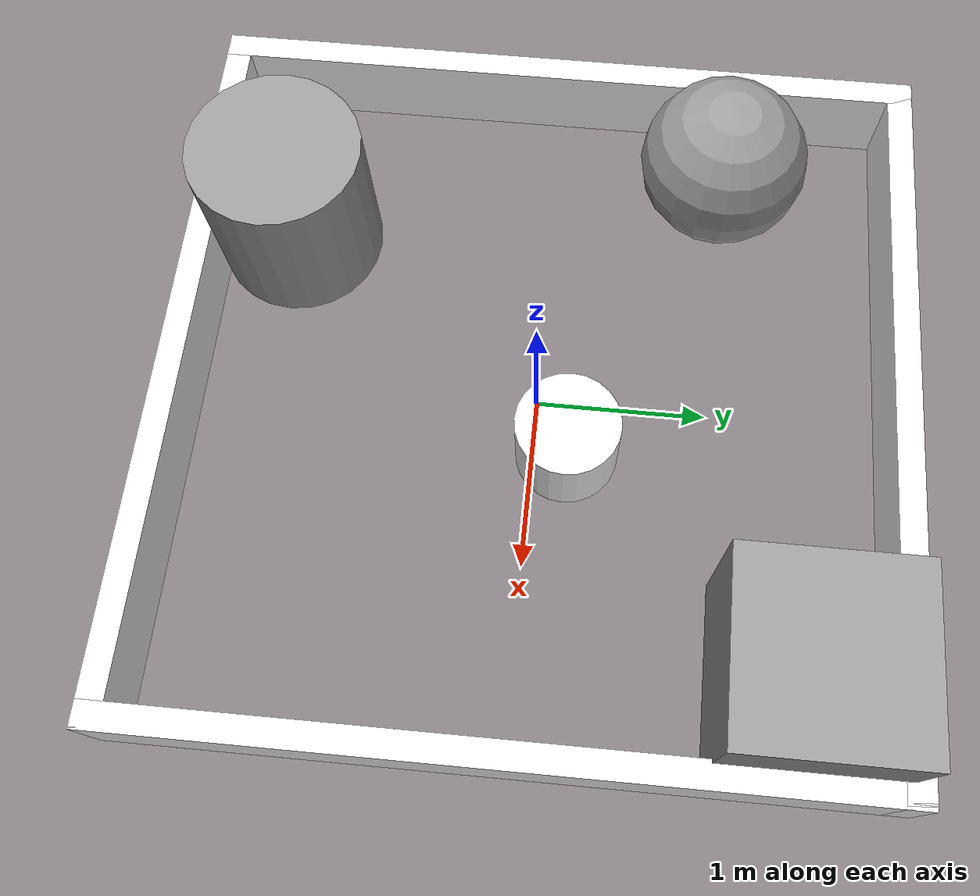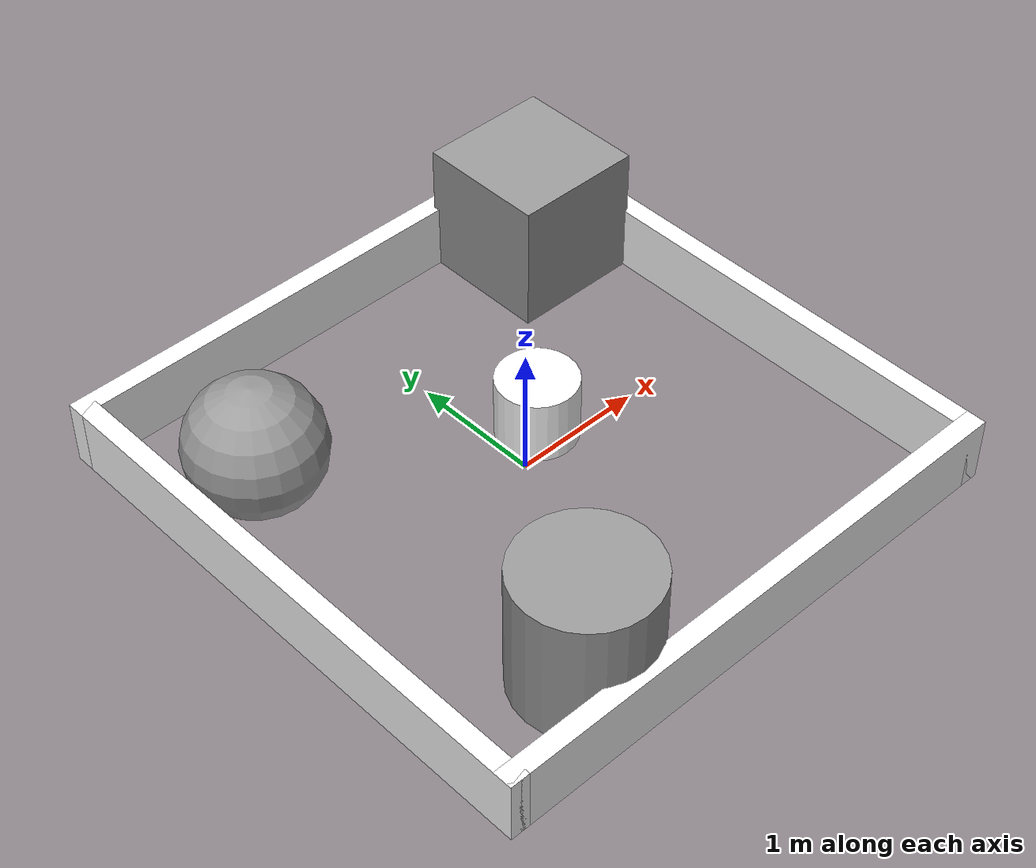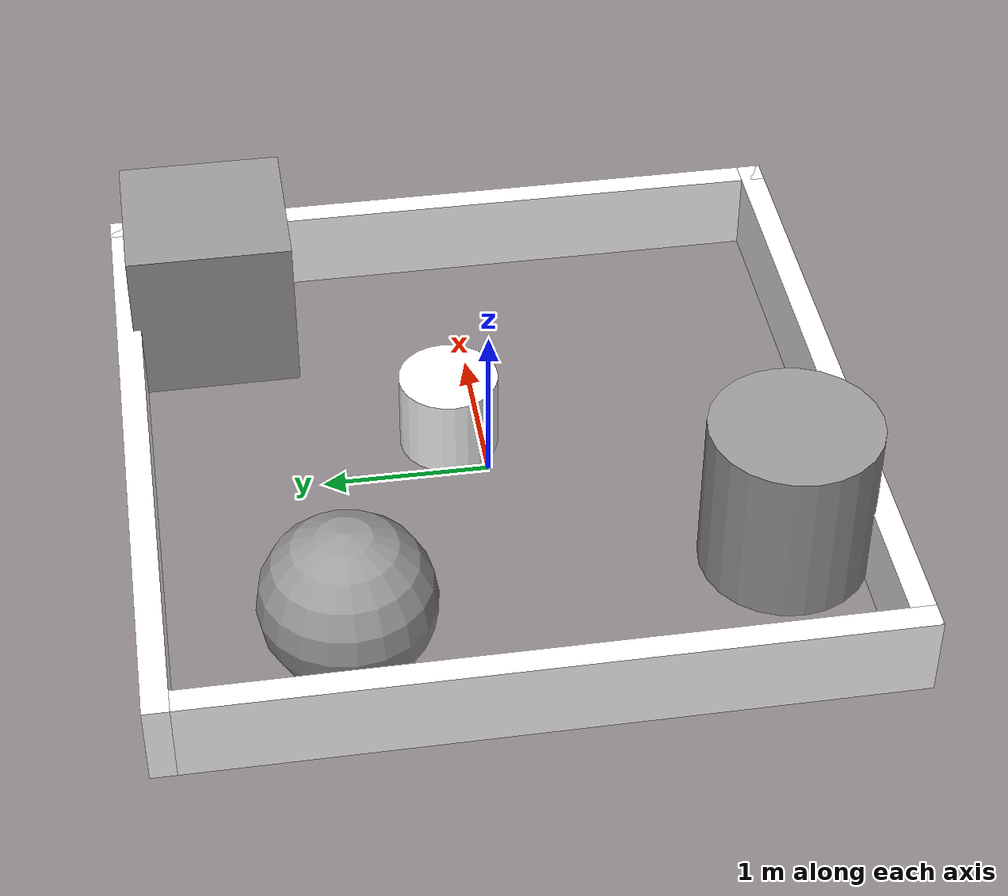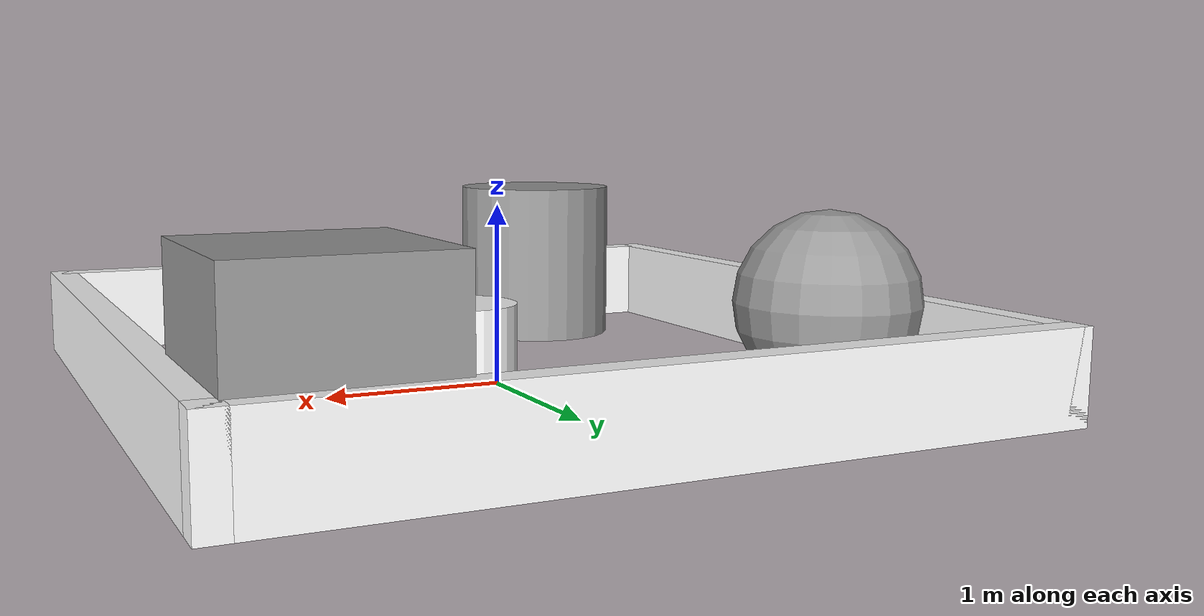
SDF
<?xml version='1.0'?>
<sdf version='1.6'>
  <model name='simple_custom'>
    <link name='fixed'>
      <pose frame=''>0 0 0 0 -0 0</pose>
      <self_collide>0</self_collide>
      <kinematic>0</kinematic>
    </link>
    <link name='Cylinder_1'>
      <pose frame=''>0.3 0.2 0 0 -0 0</pose>
      <self_collide>0</self_collide>
      <kinematic>0</kinematic>
      <visual name='Cylinder_1_Visual'>
        <pose frame=''>0 0 0.25 0 -0 0</pose>
        <geometry>
          <cylinder>
            <radius>0.3</radius>
            <length>0.5</length>
          </cylinder>
        </geometry>
        <material>
          <ambient>1 1 1 1</ambient>
          <diffuse>1 1 1 1</diffuse>
          <specular>0 0 0 1</specular>
          <emissive>0 0 0 1</emissive>
          <script>
            <name>ModelPreview_1::Cylinder_1::Cylinder_1_Visual_MATERIAL_</name>
            <uri>__default__</uri>
          </script>
        </material>
        <cast_shadows>1</cast_shadows>
        <transparency>0</transparency>
      </visual>
      <collision name='Cylinder_1_Collision'>
        <laser_retro>0</laser_retro>
        <max_contacts>10</max_contacts>
        <pose frame=''>0 0 0.25 0 -0 0</pose>
        <geometry>
          <cylinder>
            <radius>0.3</radius>
            <length>0.5</length>
          </cylinder>
        </geometry>
        <surface>
          <friction>
            <ode>
              <mu>1</mu>
              <mu2>1</mu2>
              <fdir1>0 0 0</fdir1>
              <slip1>0</slip1>
              <slip2>0</slip2>
            </ode>
            <torsional>
              <coefficient>1</coefficient>
              <patch_radius>0</patch_radius>
              <surface_radius>0</surface_radius>
              <use_patch_radius>1</use_patch_radius>
              <ode>
                <slip>0</slip>
              </ode>
            </torsional>
          </friction>
          <bounce>
            <restitution_coefficient>0</restitution_coefficient>
            <threshold>1e+06</threshold>
          </bounce>
          <contact>
            <collide_without_contact>0</collide_without_contact>
            <collide_without_contact_bitmask>1</collide_without_contact_bitmask>
            <collide_bitmask>1</collide_bitmask>
            <ode>
              <soft_cfm>0</soft_cfm>
              <soft_erp>0.2</soft_erp>
              <kp>1e+13</kp>
              <kd>1</kd>
              <max_vel>0.01</max_vel>
              <min_depth>0</min_depth>
            </ode>
            <bullet>
              <split_impulse>1</split_impulse>
              <split_impulse_penetration_threshold>-0.01</split_impulse_penetration_threshold>
              <soft_cfm>0</soft_cfm>
              <soft_erp>0.2</soft_erp>
              <kp>1e+13</kp>
              <kd>1</kd>
            </bullet>
          </contact>
        </surface>
      </collision>
    </link>
    <link name='Wall_0'>
      <pose frame=''>0 2.075 0 0 -0 0</pose>
      <self_collide>0</self_collide>
      <kinematic>0</kinematic>
      <visual name='Wall_0_Visual'>
        <pose frame=''>0 0 0.25 0 -0 0</pose>
        <geometry>
          <box>
            <size>4.3 0.15 0.5</size>
          </box>
        </geometry>
        <material>
          <ambient>1 1 1 1</ambient>
          <diffuse>1 1 1 1</diffuse>
          <specular>0 0 0 1</specular>
          <emissive>0 0 0 1</emissive>
          <script>
            <name>ModelPreview_1::Wall_0::Wall_0_Visual_MATERIAL_</name>
            <uri>__default__</uri>
          </script>
        </material>
        <cast_shadows>1</cast_shadows>
        <transparency>0</transparency>
      </visual>
      <collision name='Wall_0_Collision'>
        <laser_retro>0</laser_retro>
        <max_contacts>10</max_contacts>
        <pose frame=''>0 0 0.25 0 -0 0</pose>
        <geometry>
          <box>
            <size>4.3 0.15 0.5</size>
          </box>
        </geometry>
        <surface>
          <friction>
            <ode>
              <mu>1</mu>
              <mu2>1</mu2>
              <fdir1>0 0 0</fdir1>
              <slip1>0</slip1>
              <slip2>0</slip2>
            </ode>
            <torsional>
              <coefficient>1</coefficient>
              <patch_radius>0</patch_radius>
              <surface_radius>0</surface_radius>
              <use_patch_radius>1</use_patch_radius>
              <ode>
                <slip>0</slip>
              </ode>
            </torsional>
          </friction>
          <bounce>
            <restitution_coefficient>0</restitution_coefficient>
            <threshold>1e+06</threshold>
          </bounce>
          <contact>
            <collide_without_contact>0</collide_without_contact>
            <collide_without_contact_bitmask>1</collide_without_contact_bitmask>
            <collide_bitmask>1</collide_bitmask>
            <ode>
              <soft_cfm>0</soft_cfm>
              <soft_erp>0.2</soft_erp>
              <kp>1e+13</kp>
              <kd>1</kd>
              <max_vel>0.01</max_vel>
              <min_depth>0</min_depth>
            </ode>
            <bullet>
              <split_impulse>1</split_impulse>
              <split_impulse_penetration_threshold>-0.01</split_impulse_penetration_threshold>
              <soft_cfm>0</soft_cfm>
              <soft_erp>0.2</soft_erp>
              <kp>1e+13</kp>
              <kd>1</kd>
            </bullet>
          </contact>
        </surface>
      </collision>
    </link>
    <link name='Wall_2'>
      <pose frame=''>-2.075 0 0 0 0 -1.5708</pose>
      <self_collide>0</self_collide>
      <kinematic>0</kinematic>
      <visual name='Wall_2_Visual'>
        <pose frame=''>0 0 0.25 0 -0 0</pose>
        <geometry>
          <box>
            <size>4.3 0.15 0.5</size>
          </box>
        </geometry>
        <material>
          <ambient>1 1 1 1</ambient>
          <diffuse>1 1 1 1</diffuse>
          <specular>0 0 0 1</specular>
          <emissive>0 0 0 1</emissive>
          <script>
            <name>ModelPreview_1::Wall_2::Wall_2_Visual_MATERIAL_</name>
            <uri>__default__</uri>
          </script>
        </material>
        <cast_shadows>1</cast_shadows>
        <transparency>0</transparency>
      </visual>
      <collision name='Wall_2_Collision'>
        <laser_retro>0</laser_retro>
        <max_contacts>10</max_contacts>
        <pose frame=''>0 0 0.25 0 -0 0</pose>
        <geometry>
          <box>
            <size>4.3 0.15 0.5</size>
          </box>
        </geometry>
        <surface>
          <friction>
            <ode>
              <mu>1</mu>
              <mu2>1</mu2>
              <fdir1>0 0 0</fdir1>
              <slip1>0</slip1>
              <slip2>0</slip2>
            </ode>
            <torsional>
              <coefficient>1</coefficient>
              <patch_radius>0</patch_radius>
              <surface_radius>0</surface_radius>
              <use_patch_radius>1</use_patch_radius>
              <ode>
                <slip>0</slip>
              </ode>
            </torsional>
          </friction>
          <bounce>
            <restitution_coefficient>0</restitution_coefficient>
            <threshold>1e+06</threshold>
          </bounce>
          <contact>
            <collide_without_contact>0</collide_without_contact>
            <collide_without_contact_bitmask>1</collide_without_contact_bitmask>
            <collide_bitmask>1</collide_bitmask>
            <ode>
              <soft_cfm>0</soft_cfm>
              <soft_erp>0.2</soft_erp>
              <kp>1e+13</kp>
              <kd>1</kd>
              <max_vel>0.01</max_vel>
              <min_depth>0</min_depth>
            </ode>
            <bullet>
              <split_impulse>1</split_impulse>
              <split_impulse_penetration_threshold>-0.01</split_impulse_penetration_threshold>
              <soft_cfm>0</soft_cfm>
              <soft_erp>0.2</soft_erp>
              <kp>1e+13</kp>
              <kd>1</kd>
            </bullet>
          </contact>
        </surface>
      </collision>
    </link>
    <link name='Wall_3'>
      <pose frame=''>0 -2.075 0 0 -0 0</pose>
      <self_collide>0</self_collide>
      <kinematic>0</kinematic>
      <visual name='Wall_3_Visual'>
        <pose frame=''>0 0 0.25 0 -0 0</pose>
        <geometry>
          <box>
            <size>4.3 0.15 0.5</size>
          </box>
        </geometry>
        <material>
          <ambient>1 1 1 1</ambient>
          <diffuse>1 1 1 1</diffuse>
          <specular>0 0 0 1</specular>
          <emissive>0 0 0 1</emissive>
          <script>
            <name>ModelPreview_1::Wall_3::Wall_3_Visual_MATERIAL_</name>
            <uri>__default__</uri>
          </script>
        </material>
        <cast_shadows>1</cast_shadows>
        <transparency>0</transparency>
      </visual>
      <collision name='Wall_3_Collision'>
        <laser_retro>0</laser_retro>
        <max_contacts>10</max_contacts>
        <pose frame=''>0 0 0.25 0 -0 0</pose>
        <geometry>
          <box>
            <size>4.3 0.15 0.5</size>
          </box>
        </geometry>
        <surface>
          <friction>
            <ode>
              <mu>1</mu>
              <mu2>1</mu2>
              <fdir1>0 0 0</fdir1>
              <slip1>0</slip1>
              <slip2>0</slip2>
            </ode>
            <torsional>
              <coefficient>1</coefficient>
              <patch_radius>0</patch_radius>
              <surface_radius>0</surface_radius>
              <use_patch_radius>1</use_patch_radius>
              <ode>
                <slip>0</slip>
              </ode>
            </torsional>
          </friction>
          <bounce>
            <restitution_coefficient>0</restitution_coefficient>
            <threshold>1e+06</threshold>
          </bounce>
          <contact>
            <collide_without_contact>0</collide_without_contact>
            <collide_without_contact_bitmask>1</collide_without_contact_bitmask>
            <collide_bitmask>1</collide_bitmask>
            <ode>
              <soft_cfm>0</soft_cfm>
              <soft_erp>0.2</soft_erp>
              <kp>1e+13</kp>
              <kd>1</kd>
              <max_vel>0.01</max_vel>
              <min_depth>0</min_depth>
            </ode>
            <bullet>
              <split_impulse>1</split_impulse>
              <split_impulse_penetration_threshold>-0.01</split_impulse_penetration_threshold>
              <soft_cfm>0</soft_cfm>
              <soft_erp>0.2</soft_erp>
              <kp>1e+13</kp>
              <kd>1</kd>
            </bullet>
          </contact>
        </surface>
      </collision>
    </link>
    <link name='Wall_4'>
      <pose frame=''>2.075 0 0 0 -0 1.5708</pose>
      <self_collide>0</self_collide>
      <kinematic>0</kinematic>
      <visual name='Wall_4_Visual'>
        <pose frame=''>0 0 0.25 0 -0 0</pose>
        <geometry>
          <box>
            <size>4.3 0.15 0.5</size>
          </box>
        </geometry>
        <material>
          <ambient>1 1 1 1</ambient>
          <diffuse>1 1 1 1</diffuse>
          <specular>0 0 0 1</specular>
          <emissive>0 0 0 1</emissive>
          <script>
            <name>ModelPreview_1::Wall_4::Wall_4_Visual_MATERIAL_</name>
            <uri>__default__</uri>
          </script>
        </material>
        <cast_shadows>1</cast_shadows>
        <transparency>0</transparency>
      </visual>
      <collision name='Wall_4_Collision'>
        <laser_retro>0</laser_retro>
        <max_contacts>10</max_contacts>
        <pose frame=''>0 0 0.25 0 -0 0</pose>
        <geometry>
          <box>
            <size>4.3 0.15 0.5</size>
          </box>
        </geometry>
        <surface>
          <friction>
            <ode>
              <mu>1</mu>
              <mu2>1</mu2>
              <fdir1>0 0 0</fdir1>
              <slip1>0</slip1>
              <slip2>0</slip2>
            </ode>
            <torsional>
              <coefficient>1</coefficient>
              <patch_radius>0</patch_radius>
              <surface_radius>0</surface_radius>
              <use_patch_radius>1</use_patch_radius>
              <ode>
                <slip>0</slip>
              </ode>
            </torsional>
          </friction>
          <bounce>
            <restitution_coefficient>0</restitution_coefficient>
            <threshold>1e+06</threshold>
          </bounce>
          <contact>
            <collide_without_contact>0</collide_without_contact>
            <collide_without_contact_bitmask>1</collide_without_contact_bitmask>
            <collide_bitmask>1</collide_bitmask>
            <ode>
              <soft_cfm>0</soft_cfm>
              <soft_erp>0.2</soft_erp>
              <kp>1e+13</kp>
              <kd>1</kd>
              <max_vel>0.01</max_vel>
              <min_depth>0</min_depth>
            </ode>
            <bullet>
              <split_impulse>1</split_impulse>
              <split_impulse_penetration_threshold>-0.01</split_impulse_penetration_threshold>
              <soft_cfm>0</soft_cfm>
              <soft_erp>0.2</soft_erp>
              <kp>1e+13</kp>
              <kd>1</kd>
            </bullet>
          </contact>
        </surface>
      </collision>
    </link>
    <link name='link_0'>
      <pose frame=''>-1 -1.57956 0.5 0 -0 0</pose>
      <inertial>
        <mass>1</mass>
        <inertia>
          <ixx>0.145833</ixx>
          <ixy>0</ixy>
          <ixz>0</ixz>
          <iyy>0.145833</iyy>
          <iyz>0</iyz>
          <izz>0.125</izz>
        </inertia>
      </inertial>
      <visual name='visual'>
        <pose frame=''>0 0 0 0 -0 0</pose>
        <geometry>
          <cylinder>
            <radius>0.5</radius>
            <length>1</length>
          </cylinder>
        </geometry>
        <material>
          <lighting>1</lighting>
          <script>
            <uri>file://media/materials/scripts/gazebo.material</uri>
            <name>Gazebo/Grey</name>
          </script>
          <ambient>0.3 0.3 0.3 1</ambient>
          <diffuse>0.7 0.7 0.7 1</diffuse>
          <specular>0.01 0.01 0.01 1</specular>
          <emissive>0 0 0 1</emissive>
        </material>
        <cast_shadows>1</cast_shadows>
        <transparency>0</transparency>
      </visual>
      <collision name='collision'>
        <laser_retro>0</laser_retro>
        <max_contacts>10</max_contacts>
        <pose frame=''>0 0 0 0 -0 0</pose>
        <geometry>
          <cylinder>
            <radius>0.5</radius>
            <length>1</length>
          </cylinder>
        </geometry>
        <surface>
          <friction>
            <ode>
              <mu>1</mu>
              <mu2>1</mu2>
              <fdir1>0 0 0</fdir1>
              <slip1>0</slip1>
              <slip2>0</slip2>
            </ode>
            <torsional>
              <coefficient>1</coefficient>
              <patch_radius>0</patch_radius>
              <surface_radius>0</surface_radius>
              <use_patch_radius>1</use_patch_radius>
              <ode>
                <slip>0</slip>
              </ode>
            </torsional>
          </friction>
          <bounce>
            <restitution_coefficient>0</restitution_coefficient>
            <threshold>1e+06</threshold>
          </bounce>
          <contact>
            <collide_without_contact>0</collide_without_contact>
            <collide_without_contact_bitmask>1</collide_without_contact_bitmask>
            <collide_bitmask>1</collide_bitmask>
            <ode>
              <soft_cfm>0</soft_cfm>
              <soft_erp>0.2</soft_erp>
              <kp>1e+13</kp>
              <kd>1</kd>
              <max_vel>0.01</max_vel>
              <min_depth>0</min_depth>
            </ode>
            <bullet>
              <split_impulse>1</split_impulse>
              <split_impulse_penetration_threshold>-0.01</split_impulse_penetration_threshold>
              <soft_cfm>0</soft_cfm>
              <soft_erp>0.2</soft_erp>
              <kp>1e+13</kp>
              <kd>1</kd>
            </bullet>
          </contact>
        </surface>
      </collision>
    </link>
    <link name='link_1'>
      <pose frame=''>1.51933 1.54828 0.5 0 -0 0</pose>
      <inertial>
        <mass>1</mass>
        <inertia>
          <ixx>0.166667</ixx>
          <ixy>0</ixy>
          <ixz>0</ixz>
          <iyy>0.166667</iyy>
          <iyz>0</iyz>
          <izz>0.166667</izz>
        </inertia>
      </inertial>
      <visual name='visual'>
        <pose frame=''>0 0 0 0 -0 0</pose>
        <geometry>
          <box>
            <size>1 1 1</size>
          </box>
        </geometry>
        <material>
          <lighting>1</lighting>
          <script>
            <uri>file://media/materials/scripts/gazebo.material</uri>
            <name>Gazebo/Grey</name>
          </script>
          <ambient>0.3 0.3 0.3 1</ambient>
          <diffuse>0.7 0.7 0.7 1</diffuse>
          <specular>0.01 0.01 0.01 1</specular>
          <emissive>0 0 0 1</emissive>
        </material>
        <cast_shadows>1</cast_shadows>
        <transparency>0</transparency>
      </visual>
      <collision name='collision'>
        <laser_retro>0</laser_retro>
        <max_contacts>10</max_contacts>
        <pose frame=''>0 0 0 0 -0 0</pose>
        <geometry>
          <box>
            <size>1 1 1</size>
          </box>
        </geometry>
        <surface>
          <friction>
            <ode>
              <mu>1</mu>
              <mu2>1</mu2>
              <fdir1>0 0 0</fdir1>
              <slip1>0</slip1>
              <slip2>0</slip2>
            </ode>
            <torsional>
              <coefficient>1</coefficient>
              <patch_radius>0</patch_radius>
              <surface_radius>0</surface_radius>
              <use_patch_radius>1</use_patch_radius>
              <ode>
                <slip>0</slip>
              </ode>
            </torsional>
          </friction>
          <bounce>
            <restitution_coefficient>0</restitution_coefficient>
            <threshold>1e+06</threshold>
          </bounce>
          <contact>
            <collide_without_contact>0</collide_without_contact>
            <collide_without_contact_bitmask>1</collide_without_contact_bitmask>
            <collide_bitmask>1</collide_bitmask>
            <ode>
              <soft_cfm>0</soft_cfm>
              <soft_erp>0.2</soft_erp>
              <kp>1e+13</kp>
              <kd>1</kd>
              <max_vel>0.01</max_vel>
              <min_depth>0</min_depth>
            </ode>
            <bullet>
              <split_impulse>1</split_impulse>
              <split_impulse_penetration_threshold>-0.01</split_impulse_penetration_threshold>
              <soft_cfm>0</soft_cfm>
              <soft_erp>0.2</soft_erp>
              <kp>1e+13</kp>
              <kd>1</kd>
            </bullet>
          </contact>
        </surface>
      </collision>
    </link>
    <link name='link_2'>
      <pose frame=''>-1.4834 1 0.5 0 -0 0</pose>
      <inertial>
        <mass>1</mass>
        <inertia>
          <ixx>0.1</ixx>
          <ixy>0</ixy>
          <ixz>0</ixz>
          <iyy>0.1</iyy>
          <iyz>0</iyz>
          <izz>0.1</izz>
        </inertia>
      </inertial>
      <visual name='visual'>
        <pose frame=''>0 0 0 0 -0 0</pose>
        <geometry>
          <sphere>
            <radius>0.5</radius>
          </sphere>
        </geometry>
        <material>
          <lighting>1</lighting>
          <script>
            <uri>file://media/materials/scripts/gazebo.material</uri>
            <name>Gazebo/Grey</name>
          </script>
          <ambient>0.3 0.3 0.3 1</ambient>
          <diffuse>0.7 0.7 0.7 1</diffuse>
          <specular>0.01 0.01 0.01 1</specular>
          <emissive>0 0 0 1</emissive>
        </material>
        <cast_shadows>1</cast_shadows>
        <transparency>0</transparency>
      </visual>
      <collision name='collision'>
        <laser_retro>0</laser_retro>
        <max_contacts>10</max_contacts>
        <pose frame=''>0 0 0 0 -0 0</pose>
        <geometry>
          <sphere>
            <radius>0.5</radius>
          </sphere>
        </geometry>
        <surface>
          <friction>
            <ode>
              <mu>1</mu>
              <mu2>1</mu2>
              <fdir1>0 0 0</fdir1>
              <slip1>0</slip1>
              <slip2>0</slip2>
            </ode>
            <torsional>
              <coefficient>1</coefficient>
              <patch_radius>0</patch_radius>
              <surface_radius>0</surface_radius>
              <use_patch_radius>1</use_patch_radius>
              <ode>
                <slip>0</slip>
              </ode>
            </torsional>
          </friction>
          <bounce>
            <restitution_coefficient>0</restitution_coefficient>
            <threshold>1e+06</threshold>
          </bounce>
          <contact>
            <collide_without_contact>0</collide_without_contact>
            <collide_without_contact_bitmask>1</collide_without_contact_bitmask>
            <collide_bitmask>1</collide_bitmask>
            <ode>
              <soft_cfm>0</soft_cfm>
              <soft_erp>0.2</soft_erp>
              <kp>1e+13</kp>
              <kd>1</kd>
              <max_vel>0.01</max_vel>
              <min_depth>0</min_depth>
            </ode>
            <bullet>
              <split_impulse>1</split_impulse>
              <split_impulse_penetration_threshold>-0.01</split_impulse_penetration_threshold>
              <soft_cfm>0</soft_cfm>
              <soft_erp>0.2</soft_erp>
              <kp>1e+13</kp>
              <kd>1</kd>
            </bullet>
          </contact>
        </surface>
      </collision>
    </link>
    <static>1</static>
    <allow_auto_disable>1</allow_auto_disable>
  </model>
</sdf>
